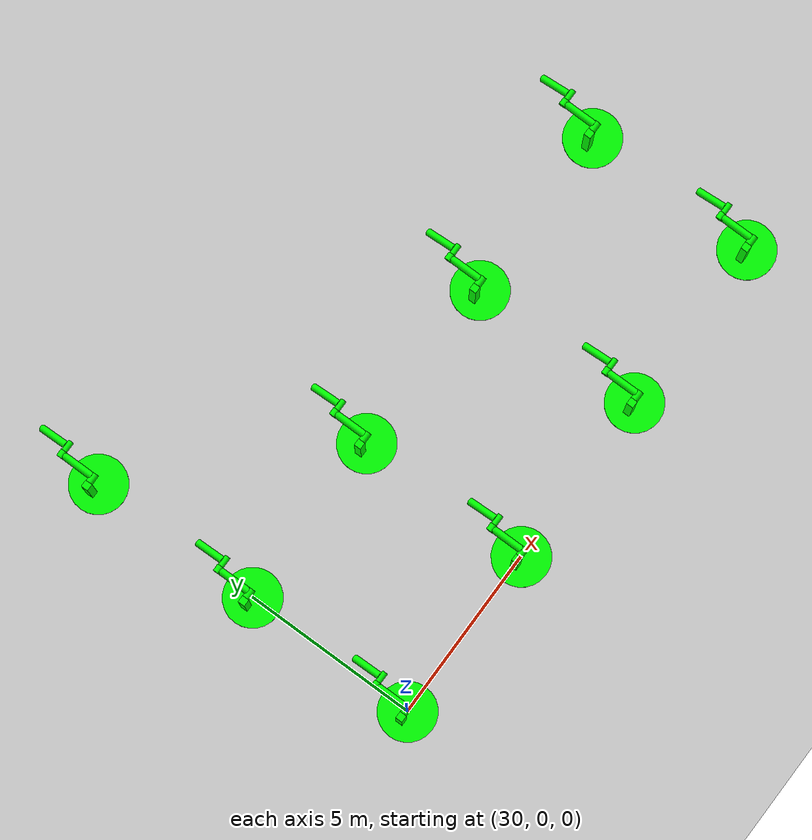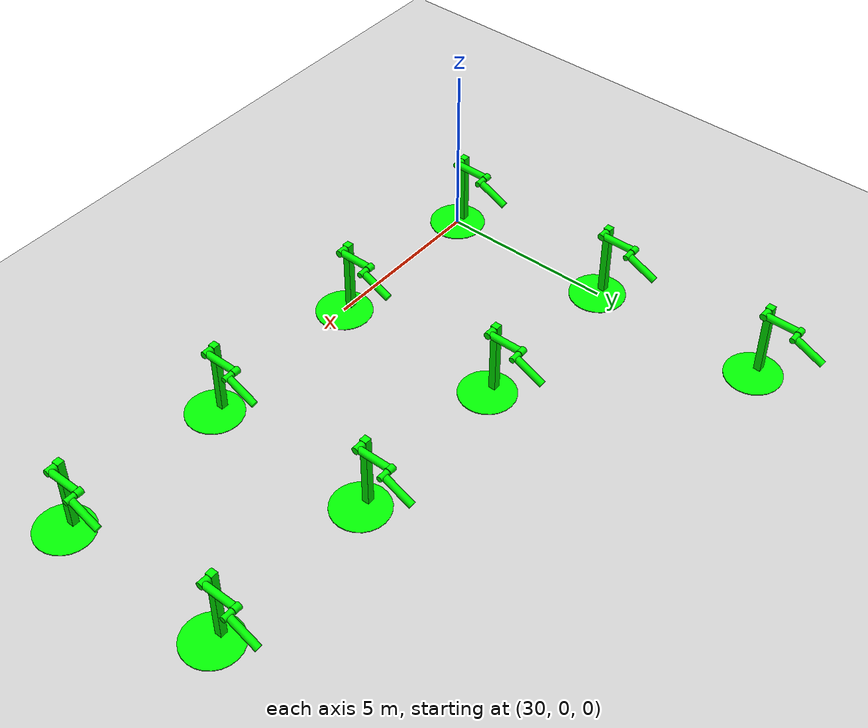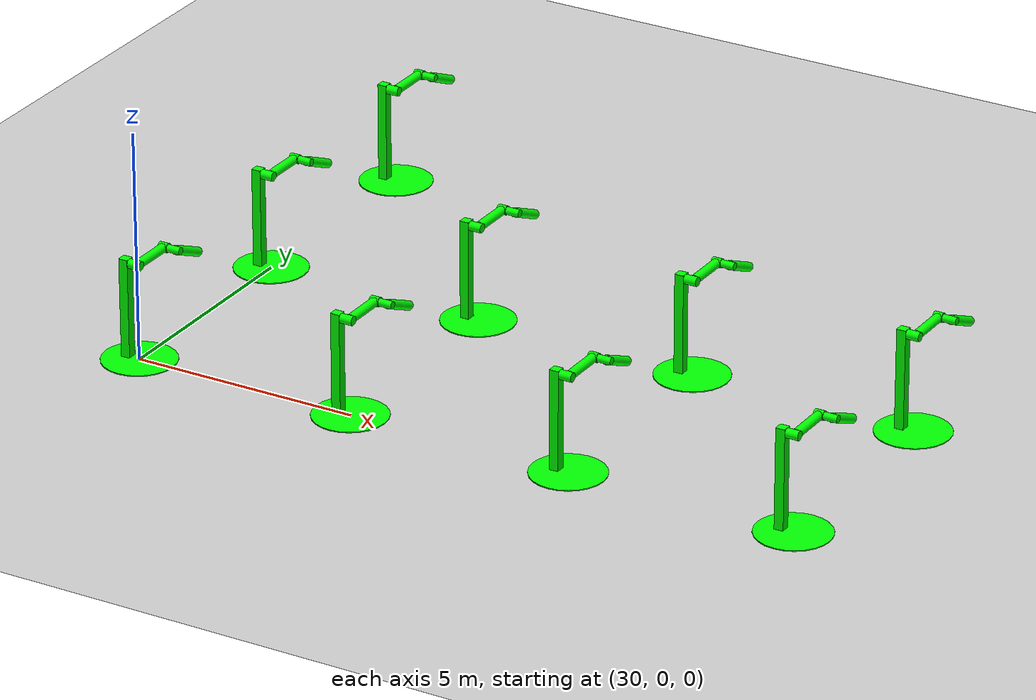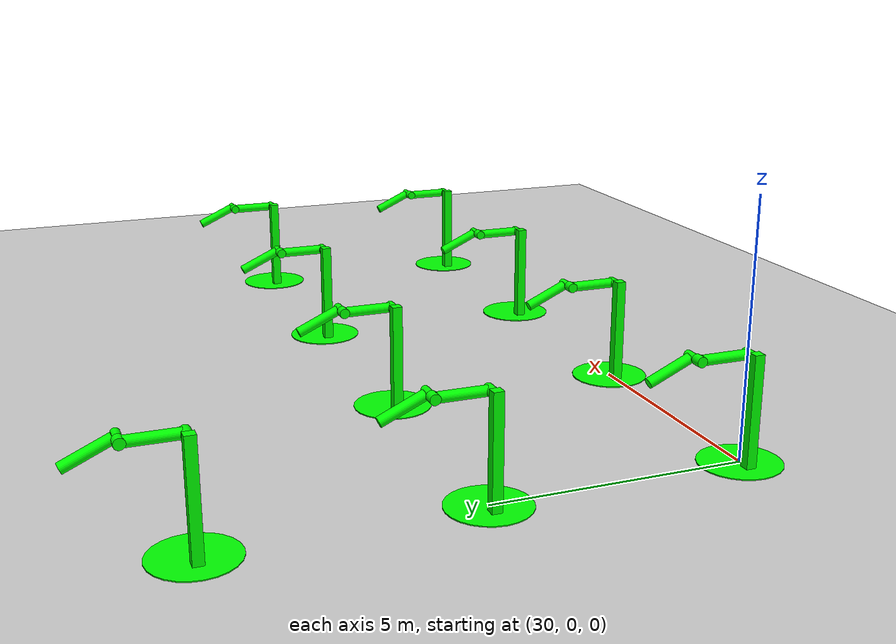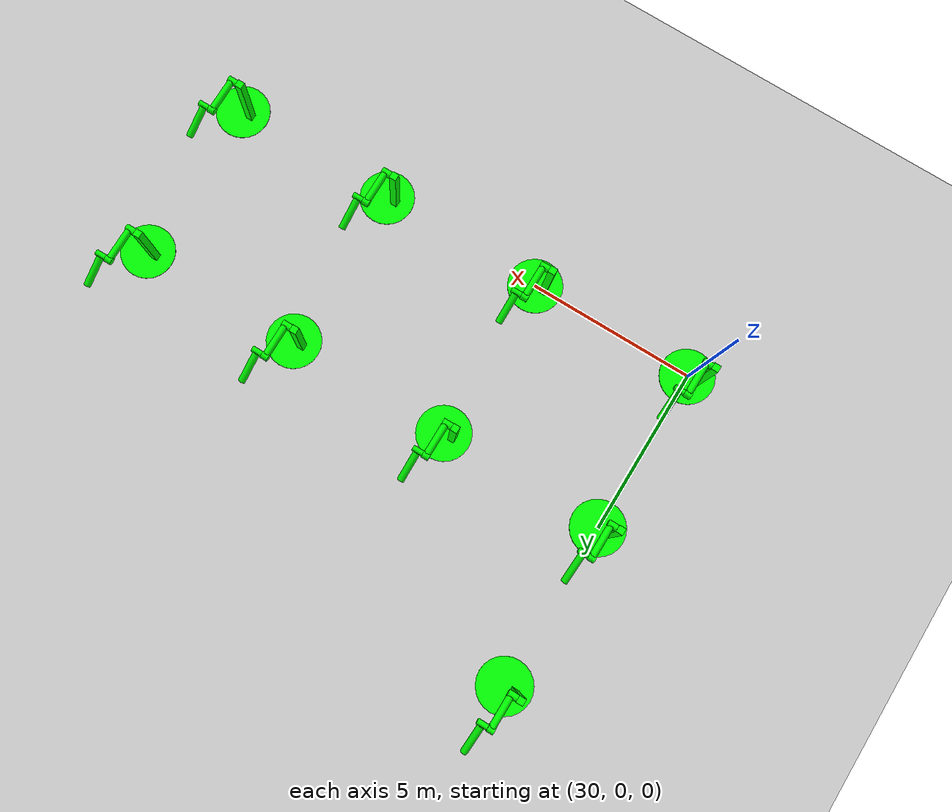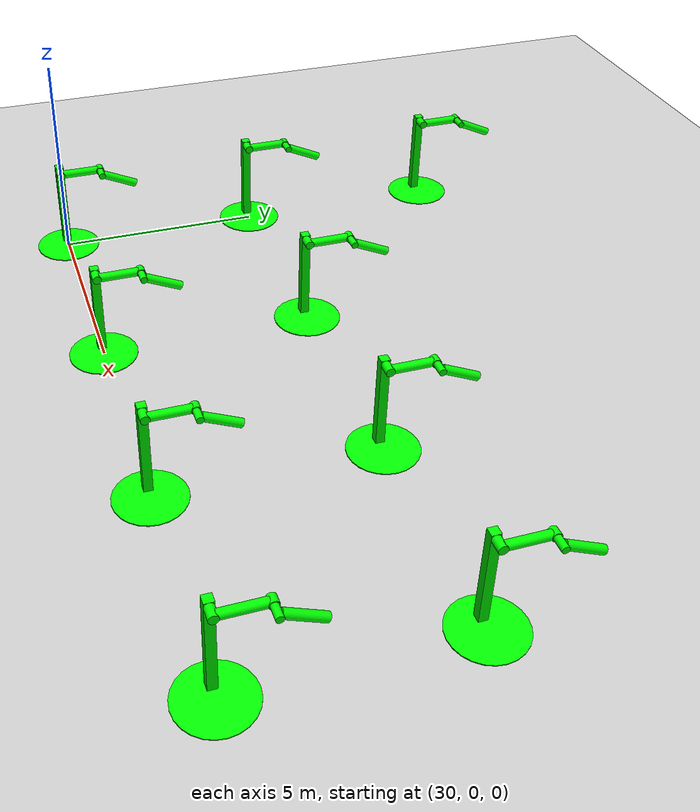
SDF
<sdf version="1.6">
 <world name="double_pendulums">
  <model name="ground_plane">
   <static>true</static>
   <link name="link">
    <collision name="collision">
     <geometry><plane><normal>0 0 1</normal><size>100 100</size></plane></geometry>
    </collision>
    <visual name="visual">
     <geometry><plane><normal>0 0 1</normal><size>100 100</size></plane></geometry>
     <material>
      <ambient>0.8 0.8 0.8 1</ambient>
      <diffuse>0.8 0.8 0.8 1</diffuse>
      <specular>0.8 0.8 0.8 1</specular>
     </material>
    </visual>
   </link>
  </model>
  <model name="dbl_pendulum_16">
   <pose>30 0 0 0 0 0</pose>
   <link name="base">
    <inertial><mass>100</mass></inertial>
    <visual name="vis_plate_on_ground">
     <pose>0 0 0.01 0 0 0</pose>
     <geometry><cylinder><radius>0.8</radius><length>0.02</length></cylinder></geometry>
     <material><ambient>0 1 0 1</ambient><diffuse>0 1 0 1</diffuse><specular>0 1 0 1</specular></material>
    </visual>
    <visual name="vis_pole">
     <pose>-0.275 0 1.1 0 0 0</pose>
     <geometry><box><size>0.2 0.2 2.2</size></box></geometry>
     <material><ambient>0 1 0 1</ambient><diffuse>0 1 0 1</diffuse><specular>0 1 0 1</specular></material>
    </visual>
    <collision name="col_plate_on_ground">
     <pose>0 0 0.01 0 0 0</pose>
     <geometry><cylinder><radius>0.8</radius><length>0.02</length></cylinder></geometry>
    </collision>
    <collision name="col_pole">
     <pose>-0.275 0 1.1 0 0 0</pose>
     <geometry><box><size>0.2 0.2 2.2</size></box></geometry>
    </collision>
   </link>
   <link name="upper_link">
    <pose>0 0 2.1 -1.5708 0 0</pose>
    <inertial><pose>0 0 0.5 0 0 0</pose></inertial>
    <visual name="vis_upper_joint">
     <pose>-0.05 0 0 0 1.5708 0</pose>
     <geometry><cylinder><radius>0.1</radius><length>0.3</length></cylinder></geometry>
     <material><ambient>0 1 0 1</ambient><diffuse>0 1 0 1</diffuse><specular>0 1 0 1</specular></material>
    </visual>
    <visual name="vis_lower_joint">
     <pose>0 0 1.0 0 1.5708 0</pose>
     <geometry><cylinder><radius>0.1</radius><length>0.2</length></cylinder></geometry>
     <material><ambient>0 1 0 1</ambient><diffuse>0 1 0 1</diffuse><specular>0 1 0 1</specular></material>
    </visual>
    <visual name="vis_cylinder">
     <pose>0 0 0.5 0 0 0</pose>
     <geometry><cylinder><radius>0.1</radius><length>0.9</length></cylinder></geometry>
     <material><ambient>0 1 0 1</ambient><diffuse>0 1 0 1</diffuse><specular>0 1 0 1</specular></material>
    </visual>
    <collision name="col_upper_joint">
     <pose>-0.05 0 0 0 1.5708 0</pose>
     <geometry><cylinder><radius>0.1</radius><length>0.3</length></cylinder></geometry>
    </collision>
    <collision name="col_lower_joint">
     <pose>0 0 1.0 0 1.5708 0</pose>
     <geometry><cylinder><radius>0.1</radius><length>0.2</length></cylinder></geometry>
    </collision>
    <collision name="col_cylinder">
     <pose>0 0 0.5 0 0 0</pose>
     <geometry><cylinder><radius>0.1</radius><length>0.9</length></cylinder></geometry>
    </collision>
   </link>
   <link name="lower_link">
    <pose>0.25 1.0 2.1 -2 0 0</pose>
    <inertial><pose>0 0 0.5 0 0 0</pose></inertial>
    <visual name="vis_lower_joint">
     <pose>0 0 0 0 1.5708 0</pose>
     <geometry><cylinder><radius>0.08</radius><length>0.3</length></cylinder></geometry>
     <material><ambient>0 1 0 1</ambient><diffuse>0 1 0 1</diffuse><specular>0 1 0 1</specular></material>
    </visual>
    <visual name="vis_cylinder">
     <pose>0 0 0.5 0 0 0</pose>
     <geometry><cylinder><radius>0.1</radius><length>0.9</length></cylinder></geometry>
     <material><ambient>0 1 0 1</ambient><diffuse>0 1 0 1</diffuse><specular>0 1 0 1</specular></material>
    </visual>
    <collision name="col_lower_joint">
     <pose>0 0 0 0 1.5708 0</pose>
     <geometry><cylinder><radius>0.08</radius><length>0.3</length></cylinder></geometry>
    </collision>
    <collision name="col_cylinder">
     <pose>0 0 0.5 0 0 0</pose>
     <geometry><cylinder><radius>0.1</radius><length>0.9</length></cylinder></geometry>
    </collision>
   </link>
   <joint name="upper_joint" type="revolute">
    <parent>base</parent>
    <child>upper_link</child>
    <axis><xyz>1.0 0 0</xyz></axis>
   </joint>
   <joint name="lower_joint" type="revolute">
    <parent>upper_link</parent>
    <child>lower_link</child>
    <axis><xyz>1.0 0 0</xyz></axis>
   </joint>
  </model>
  <model name="dbl_pendulum_17">
   <pose>35 0 0 0 0 0</pose>
   <link name="base">
    <inertial><mass>100</mass></inertial>
    <visual name="vis_plate_on_ground">
     <pose>0 0 0.01 0 0 0</pose>
     <geometry><cylinder><radius>0.8</radius><length>0.02</length></cylinder></geometry>
     <material><ambient>0 1 0 1</ambient><diffuse>0 1 0 1</diffuse><specular>0 1 0 1</specular></material>
    </visual>
    <visual name="vis_pole">
     <pose>-0.275 0 1.1 0 0 0</pose>
     <geometry><box><size>0.2 0.2 2.2</size></box></geometry>
     <material><ambient>0 1 0 1</ambient><diffuse>0 1 0 1</diffuse><specular>0 1 0 1</specular></material>
    </visual>
    <collision name="col_plate_on_ground">
     <pose>0 0 0.01 0 0 0</pose>
     <geometry><cylinder><radius>0.8</radius><length>0.02</length></cylinder></geometry>
    </collision>
    <collision name="col_pole">
     <pose>-0.275 0 1.1 0 0 0</pose>
     <geometry><box><size>0.2 0.2 2.2</size></box></geometry>
    </collision>
   </link>
   <link name="upper_link">
    <pose>0 0 2.1 -1.5708 0 0</pose>
    <inertial><pose>0 0 0.5 0 0 0</pose></inertial>
    <visual name="vis_upper_joint">
     <pose>-0.05 0 0 0 1.5708 0</pose>
     <geometry><cylinder><radius>0.1</radius><length>0.3</length></cylinder></geometry>
     <material><ambient>0 1 0 1</ambient><diffuse>0 1 0 1</diffuse><specular>0 1 0 1</specular></material>
    </visual>
    <visual name="vis_lower_joint">
     <pose>0 0 1.0 0 1.5708 0</pose>
     <geometry><cylinder><radius>0.1</radius><length>0.2</length></cylinder></geometry>
     <material><ambient>0 1 0 1</ambient><diffuse>0 1 0 1</diffuse><specular>0 1 0 1</specular></material>
    </visual>
    <visual name="vis_cylinder">
     <pose>0 0 0.5 0 0 0</pose>
     <geometry><cylinder><radius>0.1</radius><length>0.9</length></cylinder></geometry>
     <material><ambient>0 1 0 1</ambient><diffuse>0 1 0 1</diffuse><specular>0 1 0 1</specular></material>
    </visual>
    <collision name="col_upper_joint">
     <pose>-0.05 0 0 0 1.5708 0</pose>
     <geometry><cylinder><radius>0.1</radius><length>0.3</length></cylinder></geometry>
    </collision>
    <collision name="col_lower_joint">
     <pose>0 0 1.0 0 1.5708 0</pose>
     <geometry><cylinder><radius>0.1</radius><length>0.2</length></cylinder></geometry>
    </collision>
    <collision name="col_cylinder">
     <pose>0 0 0.5 0 0 0</pose>
     <geometry><cylinder><radius>0.1</radius><length>0.9</length></cylinder></geometry>
    </collision>
   </link>
   <link name="lower_link">
    <pose>0.25 1.0 2.1 -2 0 0</pose>
    <inertial><pose>0 0 0.5 0 0 0</pose></inertial>
    <visual name="vis_lower_joint">
     <pose>0 0 0 0 1.5708 0</pose>
     <geometry><cylinder><radius>0.08</radius><length>0.3</length></cylinder></geometry>
     <material><ambient>0 1 0 1</ambient><diffuse>0 1 0 1</diffuse><specular>0 1 0 1</specular></material>
    </visual>
    <visual name="vis_cylinder">
     <pose>0 0 0.5 0 0 0</pose>
     <geometry><cylinder><radius>0.1</radius><length>0.9</length></cylinder></geometry>
     <material><ambient>0 1 0 1</ambient><diffuse>0 1 0 1</diffuse><specular>0 1 0 1</specular></material>
    </visual>
    <collision name="col_lower_joint">
     <pose>0 0 0 0 1.5708 0</pose>
     <geometry><cylinder><radius>0.08</radius><length>0.3</length></cylinder></geometry>
    </collision>
    <collision name="col_cylinder">
     <pose>0 0 0.5 0 0 0</pose>
     <geometry><cylinder><radius>0.1</radius><length>0.9</length></cylinder></geometry>
    </collision>
   </link>
   <joint name="upper_joint" type="revolute">
    <parent>base</parent>
    <child>upper_link</child>
    <axis><xyz>1.0 0 0</xyz></axis>
   </joint>
   <joint name="lower_joint" type="revolute">
    <parent>upper_link</parent>
    <child>lower_link</child>
    <axis><xyz>1.0 0 0</xyz></axis>
   </joint>
  </model>
  <model name="dbl_pendulum_18">
   <pose>40 0 0 0 0 0</pose>
   <link name="base">
    <inertial><mass>100</mass></inertial>
    <visual name="vis_plate_on_ground">
     <pose>0 0 0.01 0 0 0</pose>
     <geometry><cylinder><radius>0.8</radius><length>0.02</length></cylinder></geometry>
     <material><ambient>0 1 0 1</ambient><diffuse>0 1 0 1</diffuse><specular>0 1 0 1</specular></material>
    </visual>
    <visual name="vis_pole">
     <pose>-0.275 0 1.1 0 0 0</pose>
     <geometry><box><size>0.2 0.2 2.2</size></box></geometry>
     <material><ambient>0 1 0 1</ambient><diffuse>0 1 0 1</diffuse><specular>0 1 0 1</specular></material>
    </visual>
    <collision name="col_plate_on_ground">
     <pose>0 0 0.01 0 0 0</pose>
     <geometry><cylinder><radius>0.8</radius><length>0.02</length></cylinder></geometry>
    </collision>
    <collision name="col_pole">
     <pose>-0.275 0 1.1 0 0 0</pose>
     <geometry><box><size>0.2 0.2 2.2</size></box></geometry>
    </collision>
   </link>
   <link name="upper_link">
    <pose>0 0 2.1 -1.5708 0 0</pose>
    <inertial><pose>0 0 0.5 0 0 0</pose></inertial>
    <visual name="vis_upper_joint">
     <pose>-0.05 0 0 0 1.5708 0</pose>
     <geometry><cylinder><radius>0.1</radius><length>0.3</length></cylinder></geometry>
     <material><ambient>0 1 0 1</ambient><diffuse>0 1 0 1</diffuse><specular>0 1 0 1</specular></material>
    </visual>
    <visual name="vis_lower_joint">
     <pose>0 0 1.0 0 1.5708 0</pose>
     <geometry><cylinder><radius>0.1</radius><length>0.2</length></cylinder></geometry>
     <material><ambient>0 1 0 1</ambient><diffuse>0 1 0 1</diffuse><specular>0 1 0 1</specular></material>
    </visual>
    <visual name="vis_cylinder">
     <pose>0 0 0.5 0 0 0</pose>
     <geometry><cylinder><radius>0.1</radius><length>0.9</length></cylinder></geometry>
     <material><ambient>0 1 0 1</ambient><diffuse>0 1 0 1</diffuse><specular>0 1 0 1</specular></material>
    </visual>
    <collision name="col_upper_joint">
     <pose>-0.05 0 0 0 1.5708 0</pose>
     <geometry><cylinder><radius>0.1</radius><length>0.3</length></cylinder></geometry>
    </collision>
    <collision name="col_lower_joint">
     <pose>0 0 1.0 0 1.5708 0</pose>
     <geometry><cylinder><radius>0.1</radius><length>0.2</length></cylinder></geometry>
    </collision>
    <collision name="col_cylinder">
     <pose>0 0 0.5 0 0 0</pose>
     <geometry><cylinder><radius>0.1</radius><length>0.9</length></cylinder></geometry>
    </collision>
   </link>
   <link name="lower_link">
    <pose>0.25 1.0 2.1 -2 0 0</pose>
    <inertial><pose>0 0 0.5 0 0 0</pose></inertial>
    <visual name="vis_lower_joint">
     <pose>0 0 0 0 1.5708 0</pose>
     <geometry><cylinder><radius>0.08</radius><length>0.3</length></cylinder></geometry>
     <material><ambient>0 1 0 1</ambient><diffuse>0 1 0 1</diffuse><specular>0 1 0 1</specular></material>
    </visual>
    <visual name="vis_cylinder">
     <pose>0 0 0.5 0 0 0</pose>
     <geometry><cylinder><radius>0.1</radius><length>0.9</length></cylinder></geometry>
     <material><ambient>0 1 0 1</ambient><diffuse>0 1 0 1</diffuse><specular>0 1 0 1</specular></material>
    </visual>
    <collision name="col_lower_joint">
     <pose>0 0 0 0 1.5708 0</pose>
     <geometry><cylinder><radius>0.08</radius><length>0.3</length></cylinder></geometry>
    </collision>
    <collision name="col_cylinder">
     <pose>0 0 0.5 0 0 0</pose>
     <geometry><cylinder><radius>0.1</radius><length>0.9</length></cylinder></geometry>
    </collision>
   </link>
   <joint name="upper_joint" type="revolute">
    <parent>base</parent>
    <child>upper_link</child>
    <axis><xyz>1.0 0 0</xyz></axis>
   </joint>
   <joint name="lower_joint" type="revolute">
    <parent>upper_link</parent>
    <child>lower_link</child>
    <axis><xyz>1.0 0 0</xyz></axis>
   </joint>
  </model>
  <model name="dbl_pendulum_19">
   <pose>45 0 0 0 0 0</pose>
   <link name="base">
    <inertial><mass>100</mass></inertial>
    <visual name="vis_plate_on_ground">
     <pose>0 0 0.01 0 0 0</pose>
     <geometry><cylinder><radius>0.8</radius><length>0.02</length></cylinder></geometry>
     <material><ambient>0 1 0 1</ambient><diffuse>0 1 0 1</diffuse><specular>0 1 0 1</specular></material>
    </visual>
    <visual name="vis_pole">
     <pose>-0.275 0 1.1 0 0 0</pose>
     <geometry><box><size>0.2 0.2 2.2</size></box></geometry>
     <material><ambient>0 1 0 1</ambient><diffuse>0 1 0 1</diffuse><specular>0 1 0 1</specular></material>
    </visual>
    <collision name="col_plate_on_ground">
     <pose>0 0 0.01 0 0 0</pose>
     <geometry><cylinder><radius>0.8</radius><length>0.02</length></cylinder></geometry>
    </collision>
    <collision name="col_pole">
     <pose>-0.275 0 1.1 0 0 0</pose>
     <geometry><box><size>0.2 0.2 2.2</size></box></geometry>
    </collision>
   </link>
   <link name="upper_link">
    <pose>0 0 2.1 -1.5708 0 0</pose>
    <inertial><pose>0 0 0.5 0 0 0</pose></inertial>
    <visual name="vis_upper_joint">
     <pose>-0.05 0 0 0 1.5708 0</pose>
     <geometry><cylinder><radius>0.1</radius><length>0.3</length></cylinder></geometry>
     <material><ambient>0 1 0 1</ambient><diffuse>0 1 0 1</diffuse><specular>0 1 0 1</specular></material>
    </visual>
    <visual name="vis_lower_joint">
     <pose>0 0 1.0 0 1.5708 0</pose>
     <geometry><cylinder><radius>0.1</radius><length>0.2</length></cylinder></geometry>
     <material><ambient>0 1 0 1</ambient><diffuse>0 1 0 1</diffuse><specular>0 1 0 1</specular></material>
    </visual>
    <visual name="vis_cylinder">
     <pose>0 0 0.5 0 0 0</pose>
     <geometry><cylinder><radius>0.1</radius><length>0.9</length></cylinder></geometry>
     <material><ambient>0 1 0 1</ambient><diffuse>0 1 0 1</diffuse><specular>0 1 0 1</specular></material>
    </visual>
    <collision name="col_upper_joint">
     <pose>-0.05 0 0 0 1.5708 0</pose>
     <geometry><cylinder><radius>0.1</radius><length>0.3</length></cylinder></geometry>
    </collision>
    <collision name="col_lower_joint">
     <pose>0 0 1.0 0 1.5708 0</pose>
     <geometry><cylinder><radius>0.1</radius><length>0.2</length></cylinder></geometry>
    </collision>
    <collision name="col_cylinder">
     <pose>0 0 0.5 0 0 0</pose>
     <geometry><cylinder><radius>0.1</radius><length>0.9</length></cylinder></geometry>
    </collision>
   </link>
   <link name="lower_link">
    <pose>0.25 1.0 2.1 -2 0 0</pose>
    <inertial><pose>0 0 0.5 0 0 0</pose></inertial>
    <visual name="vis_lower_joint">
     <pose>0 0 0 0 1.5708 0</pose>
     <geometry><cylinder><radius>0.08</radius><length>0.3</length></cylinder></geometry>
     <material><ambient>0 1 0 1</ambient><diffuse>0 1 0 1</diffuse><specular>0 1 0 1</specular></material>
    </visual>
    <visual name="vis_cylinder">
     <pose>0 0 0.5 0 0 0</pose>
     <geometry><cylinder><radius>0.1</radius><length>0.9</length></cylinder></geometry>
     <material><ambient>0 1 0 1</ambient><diffuse>0 1 0 1</diffuse><specular>0 1 0 1</specular></material>
    </visual>
    <collision name="col_lower_joint">
     <pose>0 0 0 0 1.5708 0</pose>
     <geometry><cylinder><radius>0.08</radius><length>0.3</length></cylinder></geometry>
    </collision>
    <collision name="col_cylinder">
     <pose>0 0 0.5 0 0 0</pose>
     <geometry><cylinder><radius>0.1</radius><length>0.9</length></cylinder></geometry>
    </collision>
   </link>
   <joint name="upper_joint" type="revolute">
    <parent>base</parent>
    <child>upper_link</child>
    <axis><xyz>1.0 0 0</xyz></axis>
   </joint>
   <joint name="lower_joint" type="revolute">
    <parent>upper_link</parent>
    <child>lower_link</child>
    <axis><xyz>1.0 0 0</xyz></axis>
   </joint>
  </model>
  <model name="dbl_pendulum_41">
   <pose>30 5 0 0 0 0</pose>
   <link name="base">
    <inertial><mass>100</mass></inertial>
    <visual name="vis_plate_on_ground">
     <pose>0 0 0.01 0 0 0</pose>
     <geometry><cylinder><radius>0.8</radius><length>0.02</length></cylinder></geometry>
     <material><ambient>0 1 0 1</ambient><diffuse>0 1 0 1</diffuse><specular>0 1 0 1</specular></material>
    </visual>
    <visual name="vis_pole">
     <pose>-0.275 0 1.1 0 0 0</pose>
     <geometry><box><size>0.2 0.2 2.2</size></box></geometry>
     <material><ambient>0 1 0 1</ambient><diffuse>0 1 0 1</diffuse><specular>0 1 0 1</specular></material>
    </visual>
    <collision name="col_plate_on_ground">
     <pose>0 0 0.01 0 0 0</pose>
     <geometry><cylinder><radius>0.8</radius><length>0.02</length></cylinder></geometry>
    </collision>
    <collision name="col_pole">
     <pose>-0.275 0 1.1 0 0 0</pose>
     <geometry><box><size>0.2 0.2 2.2</size></box></geometry>
    </collision>
   </link>
   <link name="upper_link">
    <pose>0 0 2.1 -1.5708 0 0</pose>
    <inertial><pose>0 0 0.5 0 0 0</pose></inertial>
    <visual name="vis_upper_joint">
     <pose>-0.05 0 0 0 1.5708 0</pose>
     <geometry><cylinder><radius>0.1</radius><length>0.3</length></cylinder></geometry>
     <material><ambient>0 1 0 1</ambient><diffuse>0 1 0 1</diffuse><specular>0 1 0 1</specular></material>
    </visual>
    <visual name="vis_lower_joint">
     <pose>0 0 1.0 0 1.5708 0</pose>
     <geometry><cylinder><radius>0.1</radius><length>0.2</length></cylinder></geometry>
     <material><ambient>0 1 0 1</ambient><diffuse>0 1 0 1</diffuse><specular>0 1 0 1</specular></material>
    </visual>
    <visual name="vis_cylinder">
     <pose>0 0 0.5 0 0 0</pose>
     <geometry><cylinder><radius>0.1</radius><length>0.9</length></cylinder></geometry>
     <material><ambient>0 1 0 1</ambient><diffuse>0 1 0 1</diffuse><specular>0 1 0 1</specular></material>
    </visual>
    <collision name="col_upper_joint">
     <pose>-0.05 0 0 0 1.5708 0</pose>
     <geometry><cylinder><radius>0.1</radius><length>0.3</length></cylinder></geometry>
    </collision>
    <collision name="col_lower_joint">
     <pose>0 0 1.0 0 1.5708 0</pose>
     <geometry><cylinder><radius>0.1</radius><length>0.2</length></cylinder></geometry>
    </collision>
    <collision name="col_cylinder">
     <pose>0 0 0.5 0 0 0</pose>
     <geometry><cylinder><radius>0.1</radius><length>0.9</length></cylinder></geometry>
    </collision>
   </link>
   <link name="lower_link">
    <pose>0.25 1.0 2.1 -2 0 0</pose>
    <inertial><pose>0 0 0.5 0 0 0</pose></inertial>
    <visual name="vis_lower_joint">
     <pose>0 0 0 0 1.5708 0</pose>
     <geometry><cylinder><radius>0.08</radius><length>0.3</length></cylinder></geometry>
     <material><ambient>0 1 0 1</ambient><diffuse>0 1 0 1</diffuse><specular>0 1 0 1</specular></material>
    </visual>
    <visual name="vis_cylinder">
     <pose>0 0 0.5 0 0 0</pose>
     <geometry><cylinder><radius>0.1</radius><length>0.9</length></cylinder></geometry>
     <material><ambient>0 1 0 1</ambient><diffuse>0 1 0 1</diffuse><specular>0 1 0 1</specular></material>
    </visual>
    <collision name="col_lower_joint">
     <pose>0 0 0 0 1.5708 0</pose>
     <geometry><cylinder><radius>0.08</radius><length>0.3</length></cylinder></geometry>
    </collision>
    <collision name="col_cylinder">
     <pose>0 0 0.5 0 0 0</pose>
     <geometry><cylinder><radius>0.1</radius><length>0.9</length></cylinder></geometry>
    </collision>
   </link>
   <joint name="upper_joint" type="revolute">
    <parent>base</parent>
    <child>upper_link</child>
    <axis><xyz>1.0 0 0</xyz></axis>
   </joint>
   <joint name="lower_joint" type="revolute">
    <parent>upper_link</parent>
    <child>lower_link</child>
    <axis><xyz>1.0 0 0</xyz></axis>
   </joint>
  </model>
  <model name="dbl_pendulum_42">
   <pose>35 5 0 0 0 0</pose>
   <link name="base">
    <inertial><mass>100</mass></inertial>
    <visual name="vis_plate_on_ground">
     <pose>0 0 0.01 0 0 0</pose>
     <geometry><cylinder><radius>0.8</radius><length>0.02</length></cylinder></geometry>
     <material><ambient>0 1 0 1</ambient><diffuse>0 1 0 1</diffuse><specular>0 1 0 1</specular></material>
    </visual>
    <visual name="vis_pole">
     <pose>-0.275 0 1.1 0 0 0</pose>
     <geometry><box><size>0.2 0.2 2.2</size></box></geometry>
     <material><ambient>0 1 0 1</ambient><diffuse>0 1 0 1</diffuse><specular>0 1 0 1</specular></material>
    </visual>
    <collision name="col_plate_on_ground">
     <pose>0 0 0.01 0 0 0</pose>
     <geometry><cylinder><radius>0.8</radius><length>0.02</length></cylinder></geometry>
    </collision>
    <collision name="col_pole">
     <pose>-0.275 0 1.1 0 0 0</pose>
     <geometry><box><size>0.2 0.2 2.2</size></box></geometry>
    </collision>
   </link>
   <link name="upper_link">
    <pose>0 0 2.1 -1.5708 0 0</pose>
    <inertial><pose>0 0 0.5 0 0 0</pose></inertial>
    <visual name="vis_upper_joint">
     <pose>-0.05 0 0 0 1.5708 0</pose>
     <geometry><cylinder><radius>0.1</radius><length>0.3</length></cylinder></geometry>
     <material><ambient>0 1 0 1</ambient><diffuse>0 1 0 1</diffuse><specular>0 1 0 1</specular></material>
    </visual>
    <visual name="vis_lower_joint">
     <pose>0 0 1.0 0 1.5708 0</pose>
     <geometry><cylinder><radius>0.1</radius><length>0.2</length></cylinder></geometry>
     <material><ambient>0 1 0 1</ambient><diffuse>0 1 0 1</diffuse><specular>0 1 0 1</specular></material>
    </visual>
    <visual name="vis_cylinder">
     <pose>0 0 0.5 0 0 0</pose>
     <geometry><cylinder><radius>0.1</radius><length>0.9</length></cylinder></geometry>
     <material><ambient>0 1 0 1</ambient><diffuse>0 1 0 1</diffuse><specular>0 1 0 1</specular></material>
    </visual>
    <collision name="col_upper_joint">
     <pose>-0.05 0 0 0 1.5708 0</pose>
     <geometry><cylinder><radius>0.1</radius><length>0.3</length></cylinder></geometry>
    </collision>
    <collision name="col_lower_joint">
     <pose>0 0 1.0 0 1.5708 0</pose>
     <geometry><cylinder><radius>0.1</radius><length>0.2</length></cylinder></geometry>
    </collision>
    <collision name="col_cylinder">
     <pose>0 0 0.5 0 0 0</pose>
     <geometry><cylinder><radius>0.1</radius><length>0.9</length></cylinder></geometry>
    </collision>
   </link>
   <link name="lower_link">
    <pose>0.25 1.0 2.1 -2 0 0</pose>
    <inertial><pose>0 0 0.5 0 0 0</pose></inertial>
    <visual name="vis_lower_joint">
     <pose>0 0 0 0 1.5708 0</pose>
     <geometry><cylinder><radius>0.08</radius><length>0.3</length></cylinder></geometry>
     <material><ambient>0 1 0 1</ambient><diffuse>0 1 0 1</diffuse><specular>0 1 0 1</specular></material>
    </visual>
    <visual name="vis_cylinder">
     <pose>0 0 0.5 0 0 0</pose>
     <geometry><cylinder><radius>0.1</radius><length>0.9</length></cylinder></geometry>
     <material><ambient>0 1 0 1</ambient><diffuse>0 1 0 1</diffuse><specular>0 1 0 1</specular></material>
    </visual>
    <collision name="col_lower_joint">
     <pose>0 0 0 0 1.5708 0</pose>
     <geometry><cylinder><radius>0.08</radius><length>0.3</length></cylinder></geometry>
    </collision>
    <collision name="col_cylinder">
     <pose>0 0 0.5 0 0 0</pose>
     <geometry><cylinder><radius>0.1</radius><length>0.9</length></cylinder></geometry>
    </collision>
   </link>
   <joint name="upper_joint" type="revolute">
    <parent>base</parent>
    <child>upper_link</child>
    <axis><xyz>1.0 0 0</xyz></axis>
   </joint>
   <joint name="lower_joint" type="revolute">
    <parent>upper_link</parent>
    <child>lower_link</child>
    <axis><xyz>1.0 0 0</xyz></axis>
   </joint>
  </model>
  <model name="dbl_pendulum_43">
   <pose>40 5 0 0 0 0</pose>
   <link name="base">
    <inertial><mass>100</mass></inertial>
    <visual name="vis_plate_on_ground">
     <pose>0 0 0.01 0 0 0</pose>
     <geometry><cylinder><radius>0.8</radius><length>0.02</length></cylinder></geometry>
     <material><ambient>0 1 0 1</ambient><diffuse>0 1 0 1</diffuse><specular>0 1 0 1</specular></material>
    </visual>
    <visual name="vis_pole">
     <pose>-0.275 0 1.1 0 0 0</pose>
     <geometry><box><size>0.2 0.2 2.2</size></box></geometry>
     <material><ambient>0 1 0 1</ambient><diffuse>0 1 0 1</diffuse><specular>0 1 0 1</specular></material>
    </visual>
    <collision name="col_plate_on_ground">
     <pose>0 0 0.01 0 0 0</pose>
     <geometry><cylinder><radius>0.8</radius><length>0.02</length></cylinder></geometry>
    </collision>
    <collision name="col_pole">
     <pose>-0.275 0 1.1 0 0 0</pose>
     <geometry><box><size>0.2 0.2 2.2</size></box></geometry>
    </collision>
   </link>
   <link name="upper_link">
    <pose>0 0 2.1 -1.5708 0 0</pose>
    <inertial><pose>0 0 0.5 0 0 0</pose></inertial>
    <visual name="vis_upper_joint">
     <pose>-0.05 0 0 0 1.5708 0</pose>
     <geometry><cylinder><radius>0.1</radius><length>0.3</length></cylinder></geometry>
     <material><ambient>0 1 0 1</ambient><diffuse>0 1 0 1</diffuse><specular>0 1 0 1</specular></material>
    </visual>
    <visual name="vis_lower_joint">
     <pose>0 0 1.0 0 1.5708 0</pose>
     <geometry><cylinder><radius>0.1</radius><length>0.2</length></cylinder></geometry>
     <material><ambient>0 1 0 1</ambient><diffuse>0 1 0 1</diffuse><specular>0 1 0 1</specular></material>
    </visual>
    <visual name="vis_cylinder">
     <pose>0 0 0.5 0 0 0</pose>
     <geometry><cylinder><radius>0.1</radius><length>0.9</length></cylinder></geometry>
     <material><ambient>0 1 0 1</ambient><diffuse>0 1 0 1</diffuse><specular>0 1 0 1</specular></material>
    </visual>
    <collision name="col_upper_joint">
     <pose>-0.05 0 0 0 1.5708 0</pose>
     <geometry><cylinder><radius>0.1</radius><length>0.3</length></cylinder></geometry>
    </collision>
    <collision name="col_lower_joint">
     <pose>0 0 1.0 0 1.5708 0</pose>
     <geometry><cylinder><radius>0.1</radius><length>0.2</length></cylinder></geometry>
    </collision>
    <collision name="col_cylinder">
     <pose>0 0 0.5 0 0 0</pose>
     <geometry><cylinder><radius>0.1</radius><length>0.9</length></cylinder></geometry>
    </collision>
   </link>
   <link name="lower_link">
    <pose>0.25 1.0 2.1 -2 0 0</pose>
    <inertial><pose>0 0 0.5 0 0 0</pose></inertial>
    <visual name="vis_lower_joint">
     <pose>0 0 0 0 1.5708 0</pose>
     <geometry><cylinder><radius>0.08</radius><length>0.3</length></cylinder></geometry>
     <material><ambient>0 1 0 1</ambient><diffuse>0 1 0 1</diffuse><specular>0 1 0 1</specular></material>
    </visual>
    <visual name="vis_cylinder">
     <pose>0 0 0.5 0 0 0</pose>
     <geometry><cylinder><radius>0.1</radius><length>0.9</length></cylinder></geometry>
     <material><ambient>0 1 0 1</ambient><diffuse>0 1 0 1</diffuse><specular>0 1 0 1</specular></material>
    </visual>
    <collision name="col_lower_joint">
     <pose>0 0 0 0 1.5708 0</pose>
     <geometry><cylinder><radius>0.08</radius><length>0.3</length></cylinder></geometry>
    </collision>
    <collision name="col_cylinder">
     <pose>0 0 0.5 0 0 0</pose>
     <geometry><cylinder><radius>0.1</radius><length>0.9</length></cylinder></geometry>
    </collision>
   </link>
   <joint name="upper_joint" type="revolute">
    <parent>base</parent>
    <child>upper_link</child>
    <axis><xyz>1.0 0 0</xyz></axis>
   </joint>
   <joint name="lower_joint" type="revolute">
    <parent>upper_link</parent>
    <child>lower_link</child>
    <axis><xyz>1.0 0 0</xyz></axis>
   </joint>
  </model>
  <model name="dbl_pendulum_44">
   <pose>45 5 0 0 0 0</pose>
   <link name="base">
    <inertial><mass>100</mass></inertial>
    <visual name="vis_plate_on_ground">
     <pose>0 0 0.01 0 0 0</pose>
     <geometry><cylinder><radius>0.8</radius><length>0.02</length></cylinder></geometry>
     <material><ambient>0 1 0 1</ambient><diffuse>0 1 0 1</diffuse><specular>0 1 0 1</specular></material>
    </visual>
    <visual name="vis_pole">
     <pose>-0.275 0 1.1 0 0 0</pose>
     <geometry><box><size>0.2 0.2 2.2</size></box></geometry>
     <material><ambient>0 1 0 1</ambient><diffuse>0 1 0 1</diffuse><specular>0 1 0 1</specular></material>
    </visual>
    <collision name="col_plate_on_ground">
     <pose>0 0 0.01 0 0 0</pose>
     <geometry><cylinder><radius>0.8</radius><length>0.02</length></cylinder></geometry>
    </collision>
    <collision name="col_pole">
     <pose>-0.275 0 1.1 0 0 0</pose>
     <geometry><box><size>0.2 0.2 2.2</size></box></geometry>
    </collision>
   </link>
   <link name="upper_link">
    <pose>0 0 2.1 -1.5708 0 0</pose>
    <inertial><pose>0 0 0.5 0 0 0</pose></inertial>
    <visual name="vis_upper_joint">
     <pose>-0.05 0 0 0 1.5708 0</pose>
     <geometry><cylinder><radius>0.1</radius><length>0.3</length></cylinder></geometry>
     <material><ambient>0 1 0 1</ambient><diffuse>0 1 0 1</diffuse><specular>0 1 0 1</specular></material>
    </visual>
    <visual name="vis_lower_joint">
     <pose>0 0 1.0 0 1.5708 0</pose>
     <geometry><cylinder><radius>0.1</radius><length>0.2</length></cylinder></geometry>
     <material><ambient>0 1 0 1</ambient><diffuse>0 1 0 1</diffuse><specular>0 1 0 1</specular></material>
    </visual>
    <visual name="vis_cylinder">
     <pose>0 0 0.5 0 0 0</pose>
     <geometry><cylinder><radius>0.1</radius><length>0.9</length></cylinder></geometry>
     <material><ambient>0 1 0 1</ambient><diffuse>0 1 0 1</diffuse><specular>0 1 0 1</specular></material>
    </visual>
    <collision name="col_upper_joint">
     <pose>-0.05 0 0 0 1.5708 0</pose>
     <geometry><cylinder><radius>0.1</radius><length>0.3</length></cylinder></geometry>
    </collision>
    <collision name="col_lower_joint">
     <pose>0 0 1.0 0 1.5708 0</pose>
     <geometry><cylinder><radius>0.1</radius><length>0.2</length></cylinder></geometry>
    </collision>
    <collision name="col_cylinder">
     <pose>0 0 0.5 0 0 0</pose>
     <geometry><cylinder><radius>0.1</radius><length>0.9</length></cylinder></geometry>
    </collision>
   </link>
   <link name="lower_link">
    <pose>0.25 1.0 2.1 -2 0 0</pose>
    <inertial><pose>0 0 0.5 0 0 0</pose></inertial>
    <visual name="vis_lower_joint">
     <pose>0 0 0 0 1.5708 0</pose>
     <geometry><cylinder><radius>0.08</radius><length>0.3</length></cylinder></geometry>
     <material><ambient>0 1 0 1</ambient><diffuse>0 1 0 1</diffuse><specular>0 1 0 1</specular></material>
    </visual>
    <visual name="vis_cylinder">
     <pose>0 0 0.5 0 0 0</pose>
     <geometry><cylinder><radius>0.1</radius><length>0.9</length></cylinder></geometry>
     <material><ambient>0 1 0 1</ambient><diffuse>0 1 0 1</diffuse><specular>0 1 0 1</specular></material>
    </visual>
    <collision name="col_lower_joint">
     <pose>0 0 0 0 1.5708 0</pose>
     <geometry><cylinder><radius>0.08</radius><length>0.3</length></cylinder></geometry>
    </collision>
    <collision name="col_cylinder">
     <pose>0 0 0.5 0 0 0</pose>
     <geometry><cylinder><radius>0.1</radius><length>0.9</length></cylinder></geometry>
    </collision>
   </link>
   <joint name="upper_joint" type="revolute">
    <parent>base</parent>
    <child>upper_link</child>
    <axis><xyz>1.0 0 0</xyz></axis>
   </joint>
   <joint name="lower_joint" type="revolute">
    <parent>upper_link</parent>
    <child>lower_link</child>
    <axis><xyz>1.0 0 0</xyz></axis>
   </joint>
  </model>
  <model name="dbl_pendulum_66">
   <pose>30 10 0 0 0 0</pose>
   <link name="base">
    <inertial><mass>100</mass></inertial>
    <visual name="vis_plate_on_ground">
     <pose>0 0 0.01 0 0 0</pose>
     <geometry><cylinder><radius>0.8</radius><length>0.02</length></cylinder></geometry>
     <material><ambient>0 1 0 1</ambient><diffuse>0 1 0 1</diffuse><specular>0 1 0 1</specular></material>
    </visual>
    <visual name="vis_pole">
     <pose>-0.275 0 1.1 0 0 0</pose>
     <geometry><box><size>0.2 0.2 2.2</size></box></geometry>
     <material><ambient>0 1 0 1</ambient><diffuse>0 1 0 1</diffuse><specular>0 1 0 1</specular></material>
    </visual>
    <collision name="col_plate_on_ground">
     <pose>0 0 0.01 0 0 0</pose>
     <geometry><cylinder><radius>0.8</radius><length>0.02</length></cylinder></geometry>
    </collision>
    <collision name="col_pole">
     <pose>-0.275 0 1.1 0 0 0</pose>
     <geometry><box><size>0.2 0.2 2.2</size></box></geometry>
    </collision>
   </link>
   <link name="upper_link">
    <pose>0 0 2.1 -1.5708 0 0</pose>
    <inertial><pose>0 0 0.5 0 0 0</pose></inertial>
    <visual name="vis_upper_joint">
     <pose>-0.05 0 0 0 1.5708 0</pose>
     <geometry><cylinder><radius>0.1</radius><length>0.3</length></cylinder></geometry>
     <material><ambient>0 1 0 1</ambient><diffuse>0 1 0 1</diffuse><specular>0 1 0 1</specular></material>
    </visual>
    <visual name="vis_lower_joint">
     <pose>0 0 1.0 0 1.5708 0</pose>
     <geometry><cylinder><radius>0.1</radius><length>0.2</length></cylinder></geometry>
     <material><ambient>0 1 0 1</ambient><diffuse>0 1 0 1</diffuse><specular>0 1 0 1</specular></material>
    </visual>
    <visual name="vis_cylinder">
     <pose>0 0 0.5 0 0 0</pose>
     <geometry><cylinder><radius>0.1</radius><length>0.9</length></cylinder></geometry>
     <material><ambient>0 1 0 1</ambient><diffuse>0 1 0 1</diffuse><specular>0 1 0 1</specular></material>
    </visual>
    <collision name="col_upper_joint">
     <pose>-0.05 0 0 0 1.5708 0</pose>
     <geometry><cylinder><radius>0.1</radius><length>0.3</length></cylinder></geometry>
    </collision>
    <collision name="col_lower_joint">
     <pose>0 0 1.0 0 1.5708 0</pose>
     <geometry><cylinder><radius>0.1</radius><length>0.2</length></cylinder></geometry>
    </collision>
    <collision name="col_cylinder">
     <pose>0 0 0.5 0 0 0</pose>
     <geometry><cylinder><radius>0.1</radius><length>0.9</length></cylinder></geometry>
    </collision>
   </link>
   <link name="lower_link">
    <pose>0.25 1.0 2.1 -2 0 0</pose>
    <inertial><pose>0 0 0.5 0 0 0</pose></inertial>
    <visual name="vis_lower_joint">
     <pose>0 0 0 0 1.5708 0</pose>
     <geometry><cylinder><radius>0.08</radius><length>0.3</length></cylinder></geometry>
     <material><ambient>0 1 0 1</ambient><diffuse>0 1 0 1</diffuse><specular>0 1 0 1</specular></material>
    </visual>
    <visual name="vis_cylinder">
     <pose>0 0 0.5 0 0 0</pose>
     <geometry><cylinder><radius>0.1</radius><length>0.9</length></cylinder></geometry>
     <material><ambient>0 1 0 1</ambient><diffuse>0 1 0 1</diffuse><specular>0 1 0 1</specular></material>
    </visual>
    <collision name="col_lower_joint">
     <pose>0 0 0 0 1.5708 0</pose>
     <geometry><cylinder><radius>0.08</radius><length>0.3</length></cylinder></geometry>
    </collision>
    <collision name="col_cylinder">
     <pose>0 0 0.5 0 0 0</pose>
     <geometry><cylinder><radius>0.1</radius><length>0.9</length></cylinder></geometry>
    </collision>
   </link>
   <joint name="upper_joint" type="revolute">
    <parent>base</parent>
    <child>upper_link</child>
    <axis><xyz>1.0 0 0</xyz></axis>
   </joint>
   <joint name="lower_joint" type="revolute">
    <parent>upper_link</parent>
    <child>lower_link</child>
    <axis><xyz>1.0 0 0</xyz></axis>
   </joint>
  </model>
 </world>
</sdf>
